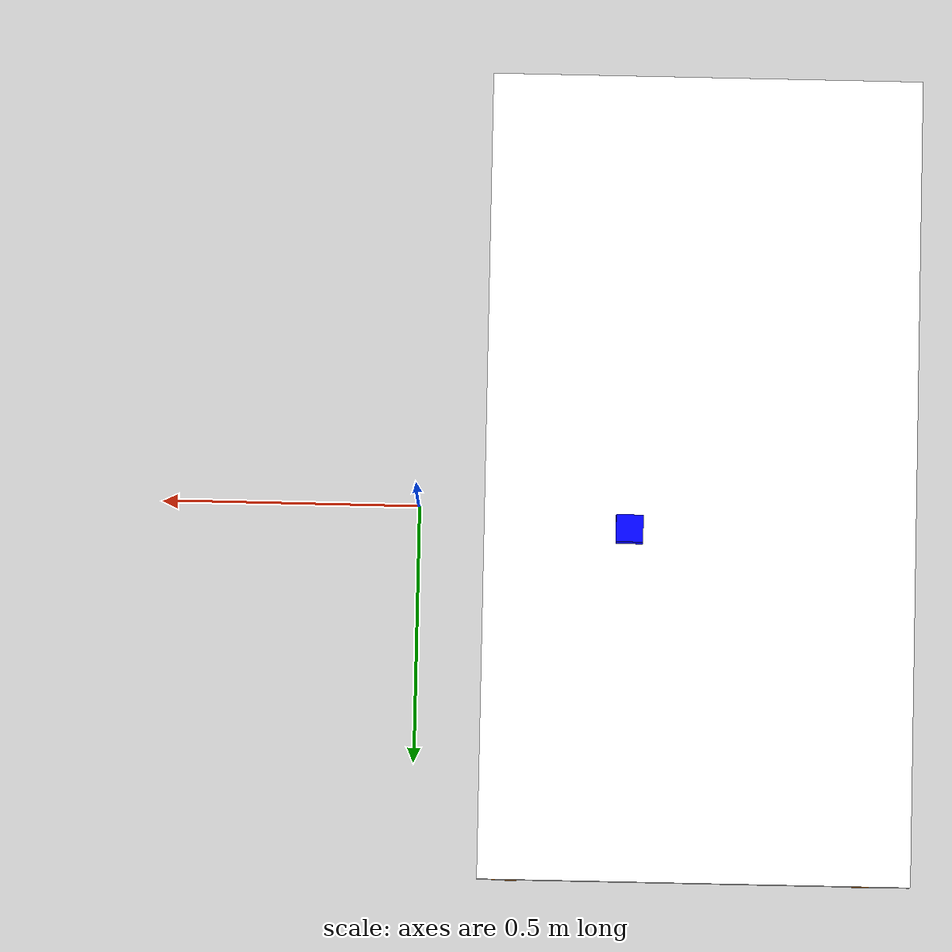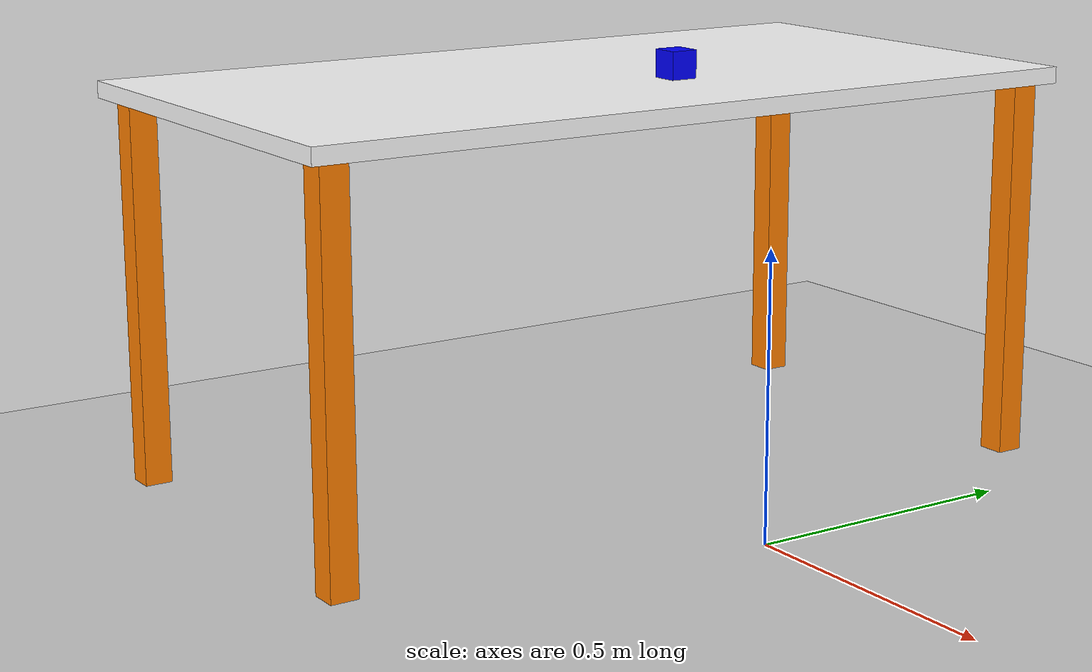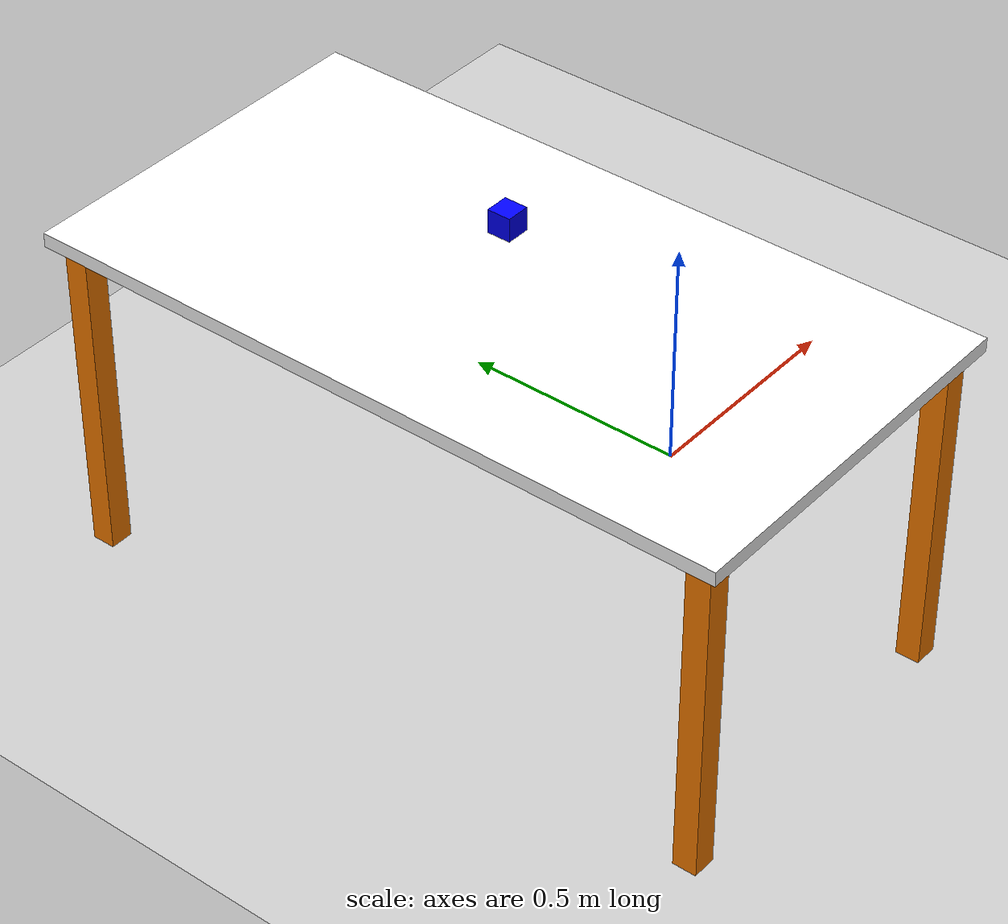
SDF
<sdf version="1.7">
 <world name="default">
  <physics name="1ms" type="ignored">
   <max_step_size>0.001</max_step_size>
   <real_time_factor>1.0</real_time_factor>
  </physics>
  <plugin filename="gz-sim-physics-system" name="gz::sim::systems::Physics"/>
  <plugin filename="gz-sim-user-commands-system" name="gz::sim::systems::UserCommands"/>
  <plugin filename="gz-sim-sensors-system" name="gz::sim::systems::Sensors">
   <render_engine>ogre2</render_engine>
  </plugin>
  <plugin filename="gz-sim-scene-broadcaster-system" name="gz::sim::systems::SceneBroadcaster"/>
  <plugin filename="gz-sim-contact-system" name="gz::sim::systems::Contact"/>
  <plugin filename="gz-sim-yarp-clock-system" name="gzyarp::Clock"/>
  <include><uri>model://table</uri><pose>-0.530772 0 0 0 0 -1.57</pose></include>
  <include><uri>model://blue-cube</uri><pose>-0.4 0.1 0.745 0 0 0</pose></include>
  <include>
   <uri>model://camera-stand</uri>
   <name>camara_externa</name>
   <pose>-1.6 0 1.0 0 0.2618 0</pose>
  </include>
  <include>
   <uri>https://fuel.gazebosim.org/1.0/OpenRobotics/models/Sun</uri>
   <pose>0 0 10 0 -0 3.14</pose>
  </include>
  <include><uri>https://fuel.gazebosim.org/1.0/OpenRobotics/models/Ground Plane</uri></include>
 </world>
</sdf>

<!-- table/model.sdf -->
<sdf version="1.7">
  <model name="table">
    <static>true</static>
    <link name="link">

      <collision name="surface">
        <pose>0 0 0.705 0 0 0</pose> <geometry>
          <box>
            <size>1.5 0.8 0.03</size>
          </box>
        </geometry>
      </collision>

      <visual name="surface_visual">
        <pose>0 0 0.705 0 0 0</pose> <geometry>
          <box>
            <size>1.5 0.8 0.03</size>
          </box>
        </geometry>
        <material>
          <ambient>1 1 1 1</ambient> <diffuse>1 1 1 1</diffuse>
        </material>
      </visual>

      <visual name="leg1">
        <pose>0.7 0.35 0.345 0 0 0</pose> <geometry>
            <box><size>0.05 0.05 0.69</size></box> </geometry>
        <material> <ambient>1 0.5 0 1</ambient>
          <diffuse>1 0.5 0 1</diffuse> </material>
      </visual>

      <visual name="leg2">
        <pose>-0.7 0.35 0.345 0 0 0</pose>
        <geometry>
            <box><size>0.05 0.05 0.69</size></box>
        </geometry>
        <material>
          <ambient>1 0.5 0 1</ambient>
          <diffuse>1 0.5 0 1</diffuse>
        </material>
      </visual>

      <visual name="leg3">
        <pose>0.7 -0.35 0.345 0 0 0</pose>
        <geometry>
            <box><size>0.05 0.05 0.69</size></box>
        </geometry>
        <material>
          <ambient>1 0.5 0 1</ambient>
          <diffuse>1 0.5 0 1</diffuse>
        </material>
      </visual>

      <visual name="leg4">
        <pose>-0.7 -0.35 0.345 0 0 0</pose>
        <geometry>
            <box><size>0.05 0.05 0.69</size></box>
        </geometry>
        <material>
          <ambient>1 0.5 0 1</ambient>
          <diffuse>1 0.5 0 1</diffuse>
        </material>
      </visual>

    </link>
  </model>
</sdf>

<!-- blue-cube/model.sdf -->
<sdf version="1.7">
  <model name="blue-cube">
    <link name="link">
      <inertial>
        <mass>0.1</mass>
        <!-- Cubo sólido: I = m*a^2/6 -->
        <inertia>
          <ixx>4.1667e-05</ixx>
          <ixy>0</ixy>
          <ixz>0</ixz>
          <iyy>4.1667e-05</iyy>
          <iyz>0</iyz>
          <izz>4.1667e-05</izz>
        </inertia>
      </inertial>

      <collision name="collision">
        <geometry>
          <box>
            <size>0.05 0.05 0.05</size>
          </box>
        </geometry>
        <!-- Igual que las yemas del iCub (mu=5): sin esto el cubo usa el default (1)
             y DART toma el mínimo de ambas superficies, así que resbalaba al agarrar. -->
        <surface>
          <friction>
            <ode>
              <mu>5.0</mu>
              <mu2>5.0</mu2>
            </ode>
          </friction>
        </surface>
      </collision>

      <visual name="visual">
        <geometry>
          <box>
            <size>0.05 0.05 0.05</size>
          </box>
        </geometry>
        <material>
          <ambient>0 0 1 1</ambient>
          <diffuse>0 0 1 1</diffuse>
          <specular>0.1 0.1 0.1 1</specular>
        </material>
      </visual>
    </link>
  </model>
</sdf>

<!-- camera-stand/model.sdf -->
<sdf version="1.7">
  <model name="camera_stand">
    <static>true</static>
    <link name="link">
      <sensor name="external_camera" type="camera">
        <pose>0 0 0 0 0 0</pose>
        <camera>
          <!-- = fovy 45° de la frontview de MuJoCo con aspecto 4:3 -->
          <horizontal_fov>1.009</horizontal_fov>
          <image>
            <width>640</width>
            <height>480</height>
            <format>R8G8B8</format>
          </image>
          <clip>
            <near>0.1</near>
            <far>100</far>
          </clip>
        </camera>
        <always_on>1</always_on>
        <update_rate>30</update_rate>
        <visualize>true</visualize>
        <topic>external_camera/image</topic>
      </sensor>
    </link>

    <plugin name="gzyarp::Camera" filename="gz-sim-yarp-camera-system">
      <yarpConfigurationString>(yarpDeviceName front_camera_rgb) (parentLinkName link) (sensorName external_camera) (framerate 30) (stamp 1)</yarpConfigurationString>
    </plugin>
    <plugin name="gzyarp::RobotInterface" filename="gz-sim-yarp-robotinterface-system">
      <yarpRobotInterfaceConfigurationFile>model://camera-stand/front_camera_nws.xml</yarpRobotInterfaceConfigurationFile>
    </plugin>
  </model>
</sdf>
